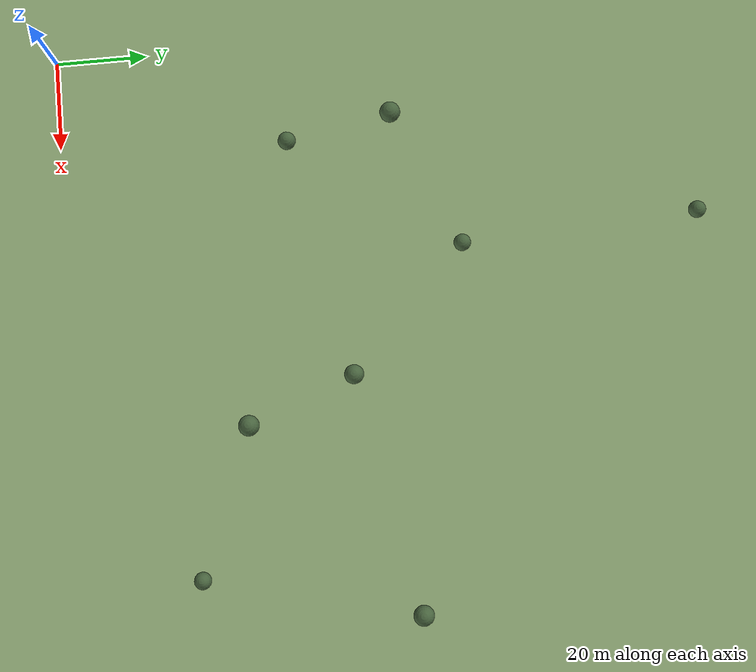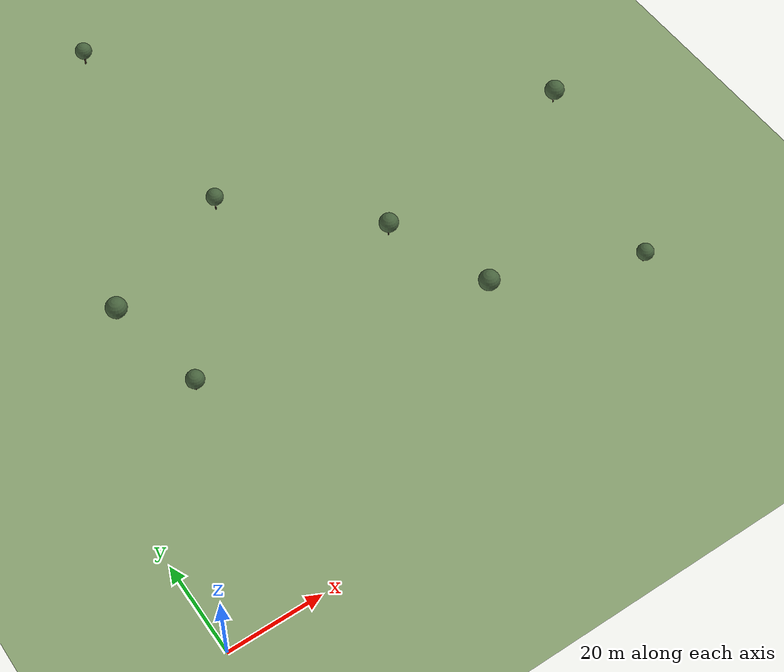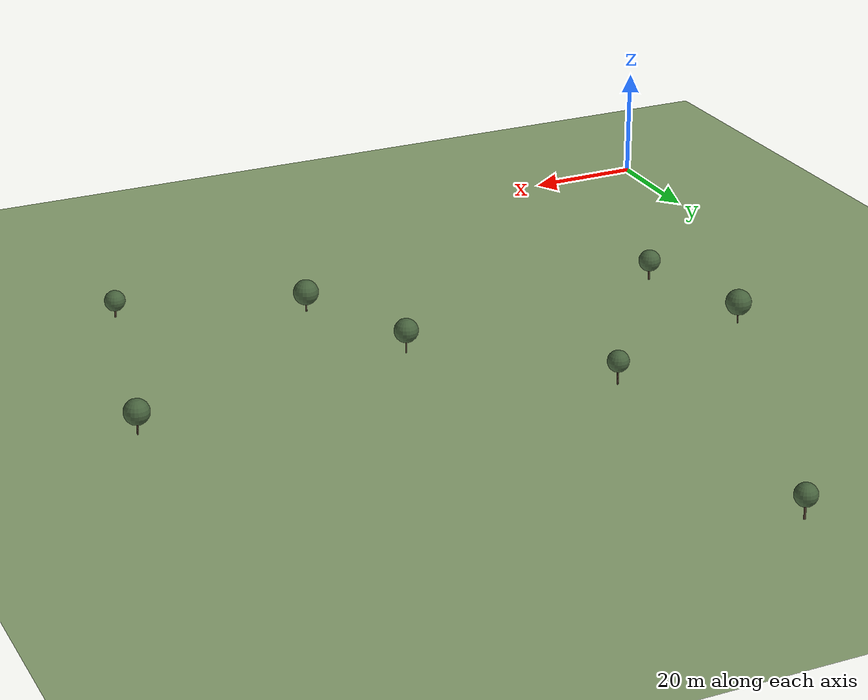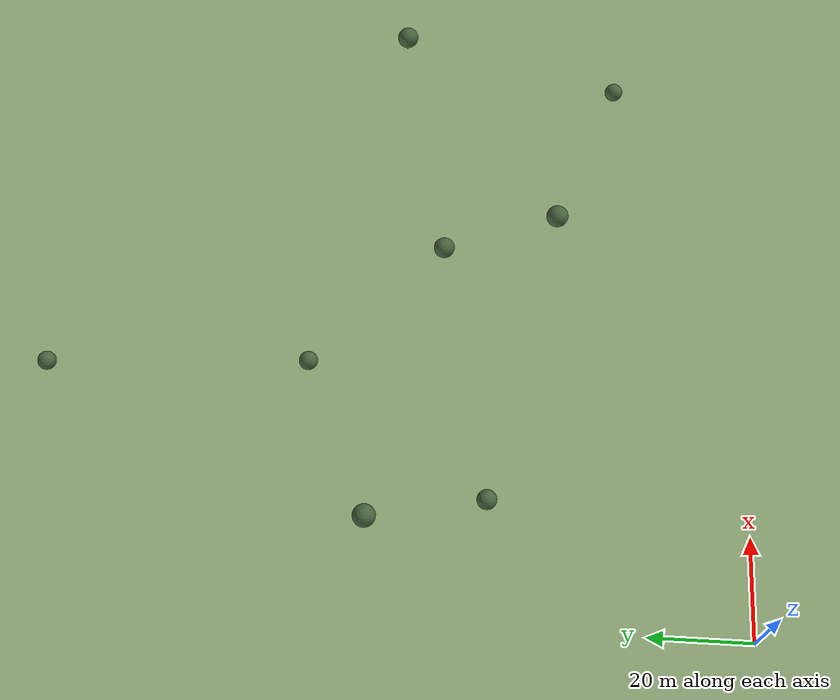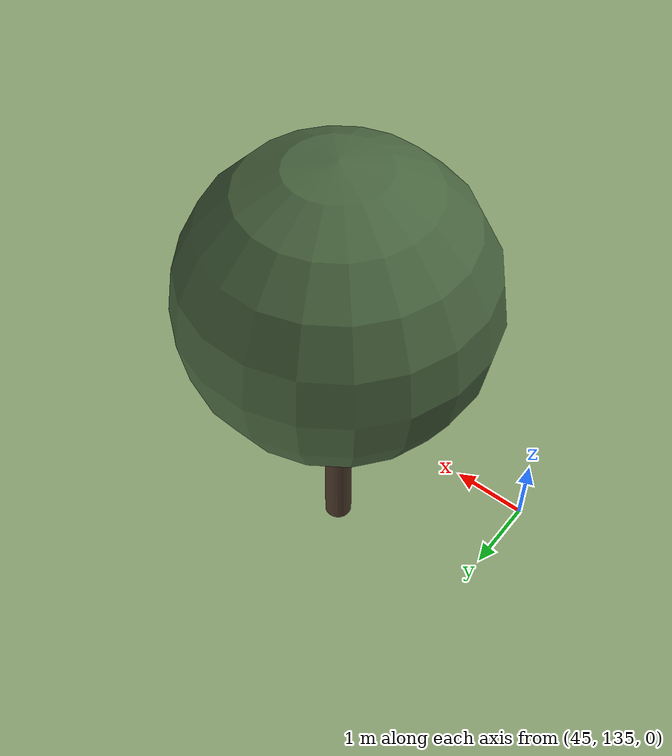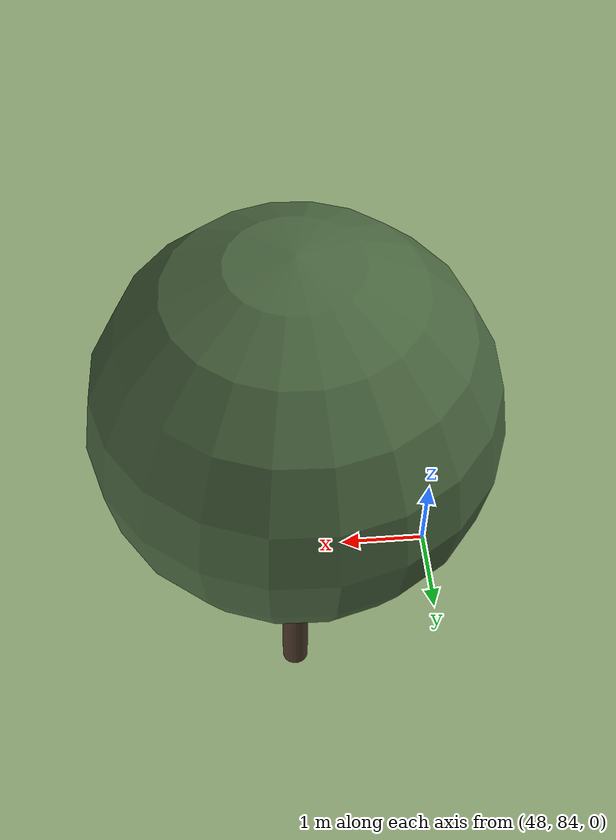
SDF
<sdf version="1.10">
 <world name="diamants_provencal_forest">
  <plugin name="gz::sim::systems::Physics" filename="gz-sim-physics-system"/>
  <plugin name="gz::sim::systems::Sensors" filename="gz-sim-sensors-system">
   <render_engine>ogre2</render_engine>
  </plugin>
  <plugin name="gz::sim::systems::SceneBroadcaster" filename="gz-sim-scene-broadcaster-system"/>
  <plugin name="gz::sim::systems::UserCommands" filename="gz-sim-user-commands-system"/>
  <plugin name="gz::sim::systems::Contact" filename="gz-sim-contact-system"/>
  <physics type="ode">
   <max_step_size>0.001</max_step_size>
   <real_time_factor>1.0</real_time_factor>
   <real_time_update_rate>1000</real_time_update_rate>
  </physics>
  <gravity>0 0 -9.81</gravity>
  <magnetic_field>5.5645e-06 2.28758e-05 -4.23884e-05</magnetic_field>
  <atmosphere type="adiabatic"/>
  <model name="ground_plane">
   <static>true</static>
   <link name="link">
    <visual name="visual">
     <geometry><plane><normal>0 0 1</normal><size>500 500</size></plane></geometry>
     <material>
      <ambient>0.45 0.55 0.35 1</ambient>
      <diffuse>0.55 0.65 0.45 1</diffuse>
      <specular>0.1 0.1 0.1 1</specular>
     </material>
    </visual>
    <collision name="collision">
     <geometry><plane><normal>0 0 1</normal><size>500 500</size></plane></geometry>
    </collision>
   </link>
  </model>
  <scene>
   <ambient>0.65 0.65 0.55 1</ambient>
   <background>0.75 0.85 1.0 1</background>
   <shadows>true</shadows>
  </scene>
  <light type="directional" name="sun">
   <pose>200 150 100 0 0 0</pose>
   <diffuse>1.0 0.95 0.8 1</diffuse>
   <specular>0.8 0.8 0.8 1</specular>
   <direction>-1 -1 -1</direction>
  </light>
  <include>
   <uri>model://chene_vert_00</uri>
   <name>chene_vert_00_instance_0</name>
   <pose>75.8 60.0 0 0 0 3.69</pose>
  </include>
  <include>
   <uri>model://chene_vert_01</uri>
   <name>chene_vert_01_instance_1</name>
   <pose>126.1 69.8 0 0 0 5.19</pose>
  </include>
  <include>
   <uri>model://chene_vert_02</uri>
   <name>chene_vert_02_instance_2</name>
   <pose>115.2 25.5 0 0 0 0.29</pose>
  </include>
  <include>
   <uri>model://chene_vert_03</uri>
   <name>chene_vert_03_instance_3</name>
   <pose>84.5 37.2 0 0 0 2.50</pose>
  </include>
  <include>
   <uri>model://chene_vert_04</uri>
   <name>chene_vert_04_instance_4</name>
   <pose>23.6 49.9 0 0 0 3.81</pose>
  </include>
  <include>
   <uri>model://chene_vert_05</uri>
   <name>chene_vert_05_instance_5</name>
   <pose>49.7 85.5 0 0 0 3.89</pose>
  </include>
  <include>
   <uri>model://chene_vert_06</uri>
   <name>chene_vert_06_instance_6</name>
   <pose>19.2 72.8 0 0 0 4.54</pose>
  </include>
  <include>
   <uri>model://chene_vert_07</uri>
   <name>chene_vert_07_instance_7</name>
   <pose>47.0 136.5 0 0 0 1.39</pose>
  </include>
 </world>
</sdf>

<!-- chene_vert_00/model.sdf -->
<sdf version="1.10">
  <model name="chene_vert_00">
    <static>true</static>

    <!-- Tronc -->
    <link name="trunk">
      <pose>0 0 1.7364745486724993 0 0 0</pose>
      <visual name="trunk_visual">
        <geometry>
          <cylinder>
            <radius>0.12723494806325075</radius>
            <length>3.4729490973449986</length>
          </cylinder>
        </geometry>
        <material>
          <ambient>0.29 0.22 0.16 1</ambient>
          <diffuse>0.29 0.22 0.16 1</diffuse>
          <specular>0.1 0.1 0.1 1</specular>
        </material>
      </visual>
      <collision name="trunk_collision">
        <geometry>
          <cylinder>
            <radius>0.12723494806325075</radius>
            <length>3.4729490973449986</length>
          </cylinder>
        </geometry>
      </collision>
    </link>

    <!-- Feuillage -->
    <link name="crown">
      <pose>0 0 4.096383596181734 0 0 0</pose>
      <visual name="crown_visual">
        <geometry>
          <sphere>
              <radius>2.0781149961224514</radius>
            </sphere>
        </geometry>
        <material>
          <ambient>0.29 0.40 0.25 1</ambient>
          <diffuse>0.29 0.40 0.25 1</diffuse>
          <specular>0.1 0.1 0.1 1</specular>
        </material>
      </visual>
      <collision name="crown_collision">
        <geometry>
          <sphere>
            <radius>1.6624919968979612</radius>
          </sphere>
        </geometry>
      </collision>
    </link>

    <!-- Joint tronc-feuillage -->
    <joint name="trunk_crown_joint" type="fixed">
      <parent>trunk</parent>
      <child>crown</child>
    </joint>

  </model>
</sdf>

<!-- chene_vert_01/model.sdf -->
<sdf version="1.10">
  <model name="chene_vert_01">
    <static>true</static>

    <!-- Tronc -->
    <link name="trunk">
      <pose>0 0 1.6390208910252144 0 0 0</pose>
      <visual name="trunk_visual">
        <geometry>
          <cylinder>
            <radius>0.1328922818516312</radius>
            <length>3.278041782050429</length>
          </cylinder>
        </geometry>
        <material>
          <ambient>0.29 0.22 0.16 1</ambient>
          <diffuse>0.29 0.22 0.16 1</diffuse>
          <specular>0.1 0.1 0.1 1</specular>
        </material>
      </visual>
      <collision name="trunk_collision">
        <geometry>
          <cylinder>
            <radius>0.1328922818516312</radius>
            <length>3.278041782050429</length>
          </cylinder>
        </geometry>
      </collision>
    </link>

    <!-- Feuillage -->
    <link name="crown">
      <pose>0 0 3.923593735012198 0 0 0</pose>
      <visual name="crown_visual">
        <geometry>
          <sphere>
              <radius>2.151839843205897</radius>
            </sphere>
        </geometry>
        <material>
          <ambient>0.29 0.40 0.25 1</ambient>
          <diffuse>0.29 0.40 0.25 1</diffuse>
          <specular>0.1 0.1 0.1 1</specular>
        </material>
      </visual>
      <collision name="crown_collision">
        <geometry>
          <sphere>
            <radius>1.7214718745647177</radius>
          </sphere>
        </geometry>
      </collision>
    </link>

    <!-- Joint tronc-feuillage -->
    <joint name="trunk_crown_joint" type="fixed">
      <parent>trunk</parent>
      <child>crown</child>
    </joint>

  </model>
</sdf>

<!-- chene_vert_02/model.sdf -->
<sdf version="1.10">
  <model name="chene_vert_02">
    <static>true</static>

    <!-- Tronc -->
    <link name="trunk">
      <pose>0 0 1.2515528110447558 0 0 0</pose>
      <visual name="trunk_visual">
        <geometry>
          <cylinder>
            <radius>0.16623268772923241</radius>
            <length>2.5031056220895116</length>
          </cylinder>
        </geometry>
        <material>
          <ambient>0.29 0.22 0.16 1</ambient>
          <diffuse>0.29 0.22 0.16 1</diffuse>
          <specular>0.1 0.1 0.1 1</specular>
        </material>
      </visual>
      <collision name="trunk_collision">
        <geometry>
          <cylinder>
            <radius>0.16623268772923241</radius>
            <length>2.5031056220895116</length>
          </cylinder>
        </geometry>
      </collision>
    </link>

    <!-- Feuillage -->
    <link name="crown">
      <pose>0 0 3.050384558915741 0 0 0</pose>
      <visual name="crown_visual">
        <geometry>
          <sphere>
              <radius>1.824263122754098</radius>
            </sphere>
        </geometry>
        <material>
          <ambient>0.29 0.40 0.25 1</ambient>
          <diffuse>0.29 0.40 0.25 1</diffuse>
          <specular>0.1 0.1 0.1 1</specular>
        </material>
      </visual>
      <collision name="crown_collision">
        <geometry>
          <sphere>
            <radius>1.4594104982032785</radius>
          </sphere>
        </geometry>
      </collision>
    </link>

    <!-- Joint tronc-feuillage -->
    <joint name="trunk_crown_joint" type="fixed">
      <parent>trunk</parent>
      <child>crown</child>
    </joint>

  </model>
</sdf>

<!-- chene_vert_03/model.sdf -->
<sdf version="1.10">
  <model name="chene_vert_03">
    <static>true</static>

    <!-- Tronc -->
    <link name="trunk">
      <pose>0 0 1.4757898495204484 0 0 0</pose>
      <visual name="trunk_visual">
        <geometry>
          <cylinder>
            <radius>0.15743279517597417</radius>
            <length>2.951579699040897</length>
          </cylinder>
        </geometry>
        <material>
          <ambient>0.29 0.22 0.16 1</ambient>
          <diffuse>0.29 0.22 0.16 1</diffuse>
          <specular>0.1 0.1 0.1 1</specular>
        </material>
      </visual>
      <collision name="trunk_collision">
        <geometry>
          <cylinder>
            <radius>0.15743279517597417</radius>
            <length>2.951579699040897</length>
          </cylinder>
        </geometry>
      </collision>
    </link>

    <!-- Feuillage -->
    <link name="crown">
      <pose>0 0 3.619798804839633 0 0 0</pose>
      <visual name="crown_visual">
        <geometry>
          <sphere>
              <radius>2.2273970193291204</radius>
            </sphere>
        </geometry>
        <material>
          <ambient>0.29 0.40 0.25 1</ambient>
          <diffuse>0.29 0.40 0.25 1</diffuse>
          <specular>0.1 0.1 0.1 1</specular>
        </material>
      </visual>
      <collision name="crown_collision">
        <geometry>
          <sphere>
            <radius>1.7819176154632963</radius>
          </sphere>
        </geometry>
      </collision>
    </link>

    <!-- Joint tronc-feuillage -->
    <joint name="trunk_crown_joint" type="fixed">
      <parent>trunk</parent>
      <child>crown</child>
    </joint>

  </model>
</sdf>

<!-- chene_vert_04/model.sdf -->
<sdf version="1.10">
  <model name="chene_vert_04">
    <static>true</static>

    <!-- Tronc -->
    <link name="trunk">
      <pose>0 0 1.5336721773657294 0 0 0</pose>
      <visual name="trunk_visual">
        <geometry>
          <cylinder>
            <radius>0.16409856998139633</radius>
            <length>3.0673443547314587</length>
          </cylinder>
        </geometry>
        <material>
          <ambient>0.29 0.22 0.16 1</ambient>
          <diffuse>0.29 0.22 0.16 1</diffuse>
          <specular>0.1 0.1 0.1 1</specular>
        </material>
      </visual>
      <collision name="trunk_collision">
        <geometry>
          <cylinder>
            <radius>0.16409856998139633</radius>
            <length>3.0673443547314587</length>
          </cylinder>
        </geometry>
      </collision>
    </link>

    <!-- Feuillage -->
    <link name="crown">
      <pose>0 0 3.6507371498349226 0 0 0</pose>
      <visual name="crown_visual">
        <geometry>
          <sphere>
              <radius>1.94464265034488</radius>
            </sphere>
        </geometry>
        <material>
          <ambient>0.29 0.40 0.25 1</ambient>
          <diffuse>0.29 0.40 0.25 1</diffuse>
          <specular>0.1 0.1 0.1 1</specular>
        </material>
      </visual>
      <collision name="crown_collision">
        <geometry>
          <sphere>
            <radius>1.555714120275904</radius>
          </sphere>
        </geometry>
      </collision>
    </link>

    <!-- Joint tronc-feuillage -->
    <joint name="trunk_crown_joint" type="fixed">
      <parent>trunk</parent>
      <child>crown</child>
    </joint>

  </model>
</sdf>

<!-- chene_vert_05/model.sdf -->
<sdf version="1.10">
  <model name="chene_vert_05">
    <static>true</static>

    <!-- Tronc -->
    <link name="trunk">
      <pose>0 0 1.8028095602111642 0 0 0</pose>
      <visual name="trunk_visual">
        <geometry>
          <cylinder>
            <radius>0.1413078519972583</radius>
            <length>3.6056191204223285</length>
          </cylinder>
        </geometry>
        <material>
          <ambient>0.29 0.22 0.16 1</ambient>
          <diffuse>0.29 0.22 0.16 1</diffuse>
          <specular>0.1 0.1 0.1 1</specular>
        </material>
      </visual>
      <collision name="trunk_collision">
        <geometry>
          <cylinder>
            <radius>0.1413078519972583</radius>
            <length>3.6056191204223285</length>
          </cylinder>
        </geometry>
      </collision>
    </link>

    <!-- Feuillage -->
    <link name="crown">
      <pose>0 0 4.157889084895565 0 0 0</pose>
      <visual name="crown_visual">
        <geometry>
          <sphere>
              <radius>1.8408998815774544</radius>
            </sphere>
        </geometry>
        <material>
          <ambient>0.29 0.40 0.25 1</ambient>
          <diffuse>0.29 0.40 0.25 1</diffuse>
          <specular>0.1 0.1 0.1 1</specular>
        </material>
      </visual>
      <collision name="crown_collision">
        <geometry>
          <sphere>
            <radius>1.4727199052619637</radius>
          </sphere>
        </geometry>
      </collision>
    </link>

    <!-- Joint tronc-feuillage -->
    <joint name="trunk_crown_joint" type="fixed">
      <parent>trunk</parent>
      <child>crown</child>
    </joint>

  </model>
</sdf>

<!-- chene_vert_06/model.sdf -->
<sdf version="1.10">
  <model name="chene_vert_06">
    <static>true</static>

    <!-- Tronc -->
    <link name="trunk">
      <pose>0 0 1.5887221904864441 0 0 0</pose>
      <visual name="trunk_visual">
        <geometry>
          <cylinder>
            <radius>0.13283996999442513</radius>
            <length>3.1774443809728883</length>
          </cylinder>
        </geometry>
        <material>
          <ambient>0.29 0.22 0.16 1</ambient>
          <diffuse>0.29 0.22 0.16 1</diffuse>
          <specular>0.1 0.1 0.1 1</specular>
        </material>
      </visual>
      <collision name="trunk_collision">
        <geometry>
          <cylinder>
            <radius>0.13283996999442513</radius>
            <length>3.1774443809728883</length>
          </cylinder>
        </geometry>
      </collision>
    </link>

    <!-- Feuillage -->
    <link name="crown">
      <pose>0 0 3.853688553691962 0 0 0</pose>
      <visual name="crown_visual">
        <geometry>
          <sphere>
              <radius>2.2541472423969124</radius>
            </sphere>
        </geometry>
        <material>
          <ambient>0.29 0.40 0.25 1</ambient>
          <diffuse>0.29 0.40 0.25 1</diffuse>
          <specular>0.1 0.1 0.1 1</specular>
        </material>
      </visual>
      <collision name="crown_collision">
        <geometry>
          <sphere>
            <radius>1.80331779391753</radius>
          </sphere>
        </geometry>
      </collision>
    </link>

    <!-- Joint tronc-feuillage -->
    <joint name="trunk_crown_joint" type="fixed">
      <parent>trunk</parent>
      <child>crown</child>
    </joint>

  </model>
</sdf>

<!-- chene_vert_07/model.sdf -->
<sdf version="1.10">
  <model name="chene_vert_07">
    <static>true</static>

    <!-- Tronc -->
    <link name="trunk">
      <pose>0 0 1.7357386566132187 0 0 0</pose>
      <visual name="trunk_visual">
        <geometry>
          <cylinder>
            <radius>0.17639593156949004</radius>
            <length>3.4714773132264374</length>
          </cylinder>
        </geometry>
        <material>
          <ambient>0.29 0.22 0.16 1</ambient>
          <diffuse>0.29 0.22 0.16 1</diffuse>
          <specular>0.1 0.1 0.1 1</specular>
        </material>
      </visual>
      <collision name="trunk_collision">
        <geometry>
          <cylinder>
            <radius>0.17639593156949004</radius>
            <length>3.4714773132264374</length>
          </cylinder>
        </geometry>
      </collision>
    </link>

    <!-- Feuillage -->
    <link name="crown">
      <pose>0 0 4.025291122522304 0 0 0</pose>
      <visual name="crown_visual">
        <geometry>
          <sphere>
              <radius>1.84604603098622</radius>
            </sphere>
        </geometry>
        <material>
          <ambient>0.29 0.40 0.25 1</ambient>
          <diffuse>0.29 0.40 0.25 1</diffuse>
          <specular>0.1 0.1 0.1 1</specular>
        </material>
      </visual>
      <collision name="crown_collision">
        <geometry>
          <sphere>
            <radius>1.4768368247889763</radius>
          </sphere>
        </geometry>
      </collision>
    </link>

    <!-- Joint tronc-feuillage -->
    <joint name="trunk_crown_joint" type="fixed">
      <parent>trunk</parent>
      <child>crown</child>
    </joint>

  </model>
</sdf>
